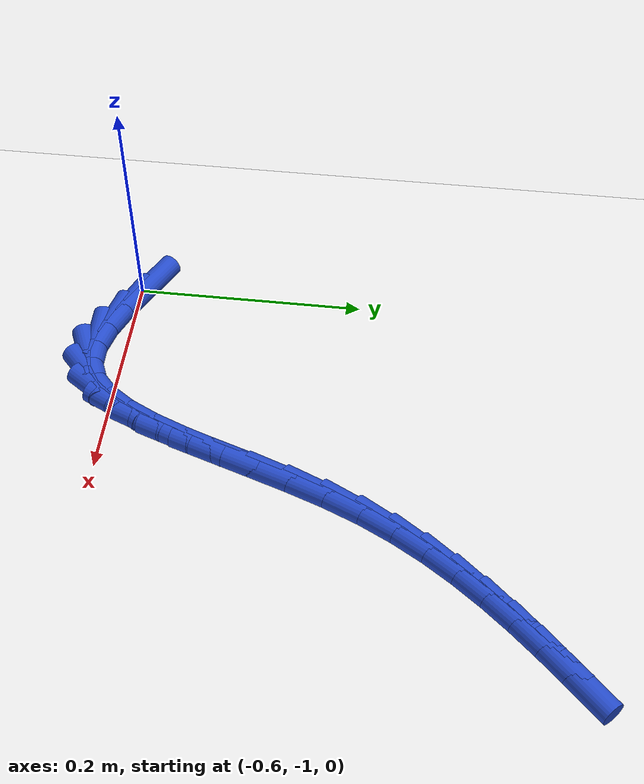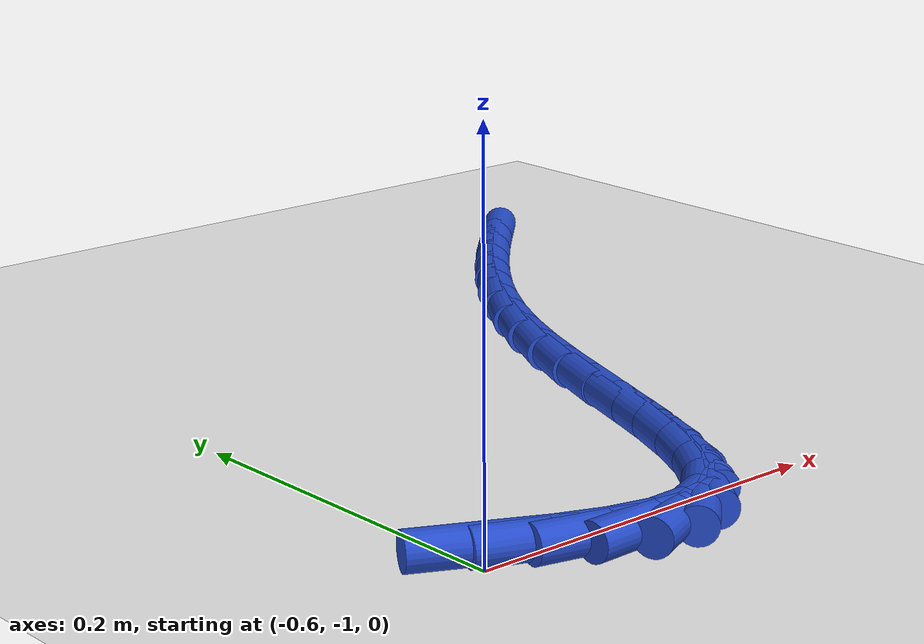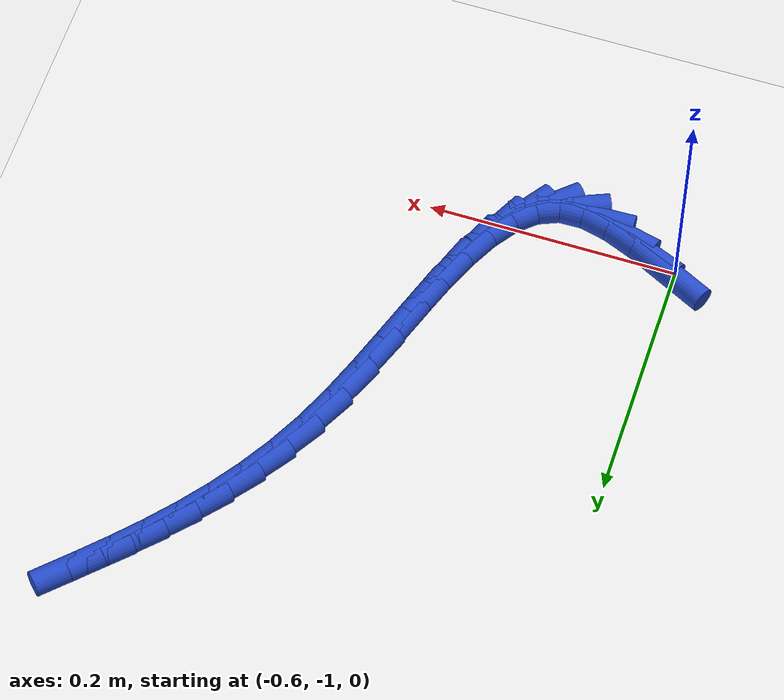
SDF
<sdf version="1.6">
 <world name="default">
  <model name="ground_plane">
   <static>1</static>
   <link name="link">
    <collision name="collision">
     <geometry><plane><normal>0 0 1</normal><size>100 100</size></plane></geometry>
     <surface><friction><ode><mu>100</mu><mu2>50</mu2></ode></friction></surface>
    </collision>
    <visual name="visual">
     <cast_shadows>0</cast_shadows>
     <geometry><plane><normal>0 0 1</normal><size>100 100</size></plane></geometry>
     <material>
      <script><uri>file://media/materials/scripts/gazebo.material</uri><name>Gazebo/WhiteGlow</name></script>
     </material>
    </visual>
   </link>
  </model>
  <model name="line">
   <link name="link_214">
    <pose>-0.5921553818854268 -0.9951253342239541 0.01 0 1.57 -0.4660273540458207</pose>
    <collision name="collision">
     <geometry><cylinder><radius>0.01</radius><length>0.08</length></cylinder></geometry>
    </collision>
    <visual name="visual">
     <material>
      <script><name>Gazebo/Blue</name><uri>file://media/materials/scripts/gazebo.material</uri></script>
     </material>
     <geometry><cylinder><radius>0.01</radius><length>0.08</length></cylinder></geometry>
    </visual>
   </link>
   <link name="link_215">
    <pose>-0.5661756937666966 -1.0081925517865744 0.01 0 1.57 -0.38678736351239834</pose>
    <collision name="collision">
     <geometry><cylinder><radius>0.01</radius><length>0.08</length></cylinder></geometry>
    </collision>
    <visual name="visual">
     <material>
      <script><name>Gazebo/Blue</name><uri>file://media/materials/scripts/gazebo.material</uri></script>
     </material>
     <geometry><cylinder><radius>0.01</radius><length>0.08</length></cylinder></geometry>
    </visual>
   </link>
   <link name="link_216">
    <pose>-0.5417505608570602 -1.0181410156908013 0.01 0 1.57 -0.23601794011443789</pose>
    <collision name="collision">
     <geometry><cylinder><radius>0.01</radius><length>0.08</length></cylinder></geometry>
    </collision>
    <visual name="visual">
     <material>
      <script><name>Gazebo/Blue</name><uri>file://media/materials/scripts/gazebo.material</uri></script>
     </material>
     <geometry><cylinder><radius>0.01</radius><length>0.08</length></cylinder></geometry>
    </visual>
   </link>
   <link name="link_217">
    <pose>-0.5192493353949075 -1.0235525662349858 0.01 0 1.57 0.026889965845606312</pose>
    <collision name="collision">
     <geometry><cylinder><radius>0.01</radius><length>0.08</length></cylinder></geometry>
    </collision>
    <visual name="visual">
     <material>
      <script><name>Gazebo/Blue</name><uri>file://media/materials/scripts/gazebo.material</uri></script>
     </material>
     <geometry><cylinder><radius>0.01</radius><length>0.08</length></cylinder></geometry>
    </visual>
   </link>
   <link name="link_218">
    <pose>-0.4990413696186292 -1.0230090437174806 0.01 0 1.57 0.40443351127549704</pose>
    <collision name="collision">
     <geometry><cylinder><radius>0.01</radius><length>0.08</length></cylinder></geometry>
    </collision>
    <visual name="visual">
     <material>
      <script><name>Gazebo/Blue</name><uri>file://media/materials/scripts/gazebo.material</uri></script>
     </material>
     <geometry><cylinder><radius>0.01</radius><length>0.08</length></cylinder></geometry>
    </visual>
   </link>
   <link name="link_219">
    <pose>-0.4813775695784509 -1.0154484235119063 0.01 0 1.57 0.7388502366377663</pose>
    <collision name="collision">
     <geometry><cylinder><radius>0.01</radius><length>0.08</length></cylinder></geometry>
    </collision>
    <visual name="visual">
     <material>
      <script><name>Gazebo/Blue</name><uri>file://media/materials/scripts/gazebo.material</uri></script>
     </material>
     <geometry><cylinder><radius>0.01</radius><length>0.08</length></cylinder></geometry>
    </visual>
   </link>
   <link name="link_220">
    <pose>-0.46597419757412284 -1.001416207542703 0.01 0 1.57 0.9626904039261351</pose>
    <collision name="collision">
     <geometry><cylinder><radius>0.01</radius><length>0.08</length></cylinder></geometry>
    </collision>
    <visual name="visual">
     <material>
      <script><name>Gazebo/Blue</name><uri>file://media/materials/scripts/gazebo.material</uri></script>
     </material>
     <geometry><cylinder><radius>0.01</radius><length>0.08</length></cylinder></geometry>
    </visual>
   </link>
   <link name="link_221">
    <pose>-0.4523967352572638 -0.9819112536278528 0.01 0 1.57 1.1006086136811015</pose>
    <collision name="collision">
     <geometry><cylinder><radius>0.01</radius><length>0.08</length></cylinder></geometry>
    </collision>
    <visual name="visual">
     <material>
      <script><name>Gazebo/Blue</name><uri>file://media/materials/scripts/gazebo.material</uri></script>
     </material>
     <geometry><cylinder><radius>0.01</radius><length>0.08</length></cylinder></geometry>
    </visual>
   </link>
   <link name="link_222">
    <pose>-0.4402106555464107 -0.9579324458433048 0.01 0 1.57 1.1825358546071738</pose>
    <collision name="collision">
     <geometry><cylinder><radius>0.01</radius><length>0.08</length></cylinder></geometry>
    </collision>
    <visual name="visual">
     <material>
      <script><name>Gazebo/Blue</name><uri>file://media/materials/scripts/gazebo.material</uri></script>
     </material>
     <geometry><cylinder><radius>0.01</radius><length>0.08</length></cylinder></geometry>
    </visual>
   </link>
   <link name="link_223">
    <pose>-0.42898143136010125 -0.9304786682650094 0.01 0 1.57 1.2272492193858855</pose>
    <collision name="collision">
     <geometry><cylinder><radius>0.01</radius><length>0.08</length></cylinder></geometry>
    </collision>
    <visual name="visual">
     <material>
      <script><name>Gazebo/Blue</name><uri>file://media/materials/scripts/gazebo.material</uri></script>
     </material>
     <geometry><cylinder><radius>0.01</radius><length>0.08</length></cylinder></geometry>
    </visual>
   </link>
   <link name="link_224">
    <pose>-0.41827453561687267 -0.9005488049689155 0.01 0 1.57 1.244751474444201</pose>
    <collision name="collision">
     <geometry><cylinder><radius>0.01</radius><length>0.08</length></cylinder></geometry>
    </collision>
    <visual name="visual">
     <material>
      <script><name>Gazebo/Blue</name><uri>file://media/materials/scripts/gazebo.material</uri></script>
     </material>
     <geometry><cylinder><radius>0.01</radius><length>0.08</length></cylinder></geometry>
    </visual>
   </link>
   <link name="link_225">
    <pose>-0.40765544123526265 -0.8691417400309738 0.01 0 1.57 1.23955385034805</pose>
    <collision name="collision">
     <geometry><cylinder><radius>0.01</radius><length>0.08</length></cylinder></geometry>
    </collision>
    <visual name="visual">
     <material>
      <script><name>Gazebo/Blue</name><uri>file://media/materials/scripts/gazebo.material</uri></script>
     </material>
     <geometry><cylinder><radius>0.01</radius><length>0.08</length></cylinder></geometry>
    </visual>
   </link>
   <link name="link_226">
    <pose>-0.39668962113380857 -0.8372563575271335 0.01 0 1.57 1.2124375409839374</pose>
    <collision name="collision">
     <geometry><cylinder><radius>0.01</radius><length>0.08</length></cylinder></geometry>
    </collision>
    <visual name="visual">
     <material>
      <script><name>Gazebo/Blue</name><uri>file://media/materials/scripts/gazebo.material</uri></script>
     </material>
     <geometry><cylinder><radius>0.01</radius><length>0.08</length></cylinder></geometry>
    </visual>
   </link>
   <link name="link_227">
    <pose>-0.384942548231048 -0.8058915415333451 0.01 0 1.57 1.1611530849272647</pose>
    <collision name="collision">
     <geometry><cylinder><radius>0.01</radius><length>0.08</length></cylinder></geometry>
    </collision>
    <visual name="visual">
     <material>
      <script><name>Gazebo/Blue</name><uri>file://media/materials/scripts/gazebo.material</uri></script>
     </material>
     <geometry><cylinder><radius>0.01</radius><length>0.08</length></cylinder></geometry>
    </visual>
   </link>
   <link name="link_228">
    <pose>-0.3719817343364281 -0.7760421601541497 0.01 0 1.57 1.0920121419628919</pose>
    <collision name="collision">
     <geometry><cylinder><radius>0.01</radius><length>0.08</length></cylinder></geometry>
    </collision>
    <visual name="visual">
     <material>
      <script><name>Gazebo/Blue</name><uri>file://media/materials/scripts/gazebo.material</uri></script>
     </material>
     <geometry><cylinder><radius>0.01</radius><length>0.08</length></cylinder></geometry>
    </visual>
   </link>
   <link name="link_229">
    <pose>-0.35758050833045535 -0.7482976868412583 0.01 0 1.57 1.0244011800312862</pose>
    <collision name="collision">
     <geometry><cylinder><radius>0.01</radius><length>0.08</length></cylinder></geometry>
    </collision>
    <visual name="visual">
     <material>
      <script><name>Gazebo/Blue</name><uri>file://media/materials/scripts/gazebo.material</uri></script>
     </material>
     <geometry><cylinder><radius>0.01</radius><length>0.08</length></cylinder></geometry>
    </visual>
   </link>
   <link name="link_230">
    <pose>-0.3418916291456159 -0.722500237631351 0.01 0 1.57 0.9622834001406876</pose>
    <collision name="collision">
     <geometry><cylinder><radius>0.01</radius><length>0.08</length></cylinder></geometry>
    </collision>
    <visual name="visual">
     <material>
      <script><name>Gazebo/Blue</name><uri>file://media/materials/scripts/gazebo.material</uri></script>
     </material>
     <geometry><cylinder><radius>0.01</radius><length>0.08</length></cylinder></geometry>
    </visual>
   </link>
   <link name="link_231">
    <pose>-0.3251087445690883 -0.6984113904261131 0.01 0 1.57 0.9072527605752936</pose>
    <collision name="collision">
     <geometry><cylinder><radius>0.01</radius><length>0.08</length></cylinder></geometry>
    </collision>
    <visual name="visual">
     <material>
      <script><name>Gazebo/Blue</name><uri>file://media/materials/scripts/gazebo.material</uri></script>
     </material>
     <geometry><cylinder><radius>0.01</radius><length>0.08</length></cylinder></geometry>
    </visual>
   </link>
   <link name="link_232">
    <pose>-0.3074255023880512 -0.6757927231272305 0.01 0 1.57 0.8606003191371141</pose>
    <collision name="collision">
     <geometry><cylinder><radius>0.01</radius><length>0.08</length></cylinder></geometry>
    </collision>
    <visual name="visual">
     <material>
      <script><name>Gazebo/Blue</name><uri>file://media/materials/scripts/gazebo.material</uri></script>
     </material>
     <geometry><cylinder><radius>0.01</radius><length>0.08</length></cylinder></geometry>
    </visual>
   </link>
   <link name="link_233">
    <pose>-0.28903555038968326 -0.6544058136363889 0.01 0 1.57 0.8233110102450037</pose>
    <collision name="collision">
     <geometry><cylinder><radius>0.01</radius><length>0.08</length></cylinder></geometry>
    </collision>
    <visual name="visual">
     <material>
      <script><name>Gazebo/Blue</name><uri>file://media/materials/scripts/gazebo.material</uri></script>
     </material>
     <geometry><cylinder><radius>0.01</radius><length>0.08</length></cylinder></geometry>
    </visual>
   </link>
   <link name="link_234">
    <pose>-0.2701325363611632 -0.6340122398552743 0.01 0 1.57 0.796108516586988</pose>
    <collision name="collision">
     <geometry><cylinder><radius>0.01</radius><length>0.08</length></cylinder></geometry>
    </collision>
    <visual name="visual">
     <material>
      <script><name>Gazebo/Blue</name><uri>file://media/materials/scripts/gazebo.material</uri></script>
     </material>
     <geometry><cylinder><radius>0.01</radius><length>0.08</length></cylinder></geometry>
    </visual>
   </link>
   <link name="link_235">
    <pose>-0.25091010808966974 -0.6143735796855726 0.01 0 1.57 0.7795229012452605</pose>
    <collision name="collision">
     <geometry><cylinder><radius>0.01</radius><length>0.08</length></cylinder></geometry>
    </collision>
    <visual name="visual">
     <material>
      <script><name>Gazebo/Blue</name><uri>file://media/materials/scripts/gazebo.material</uri></script>
     </material>
     <geometry><cylinder><radius>0.01</radius><length>0.08</length></cylinder></geometry>
    </visual>
   </link>
  </model>
 </world>
</sdf>
